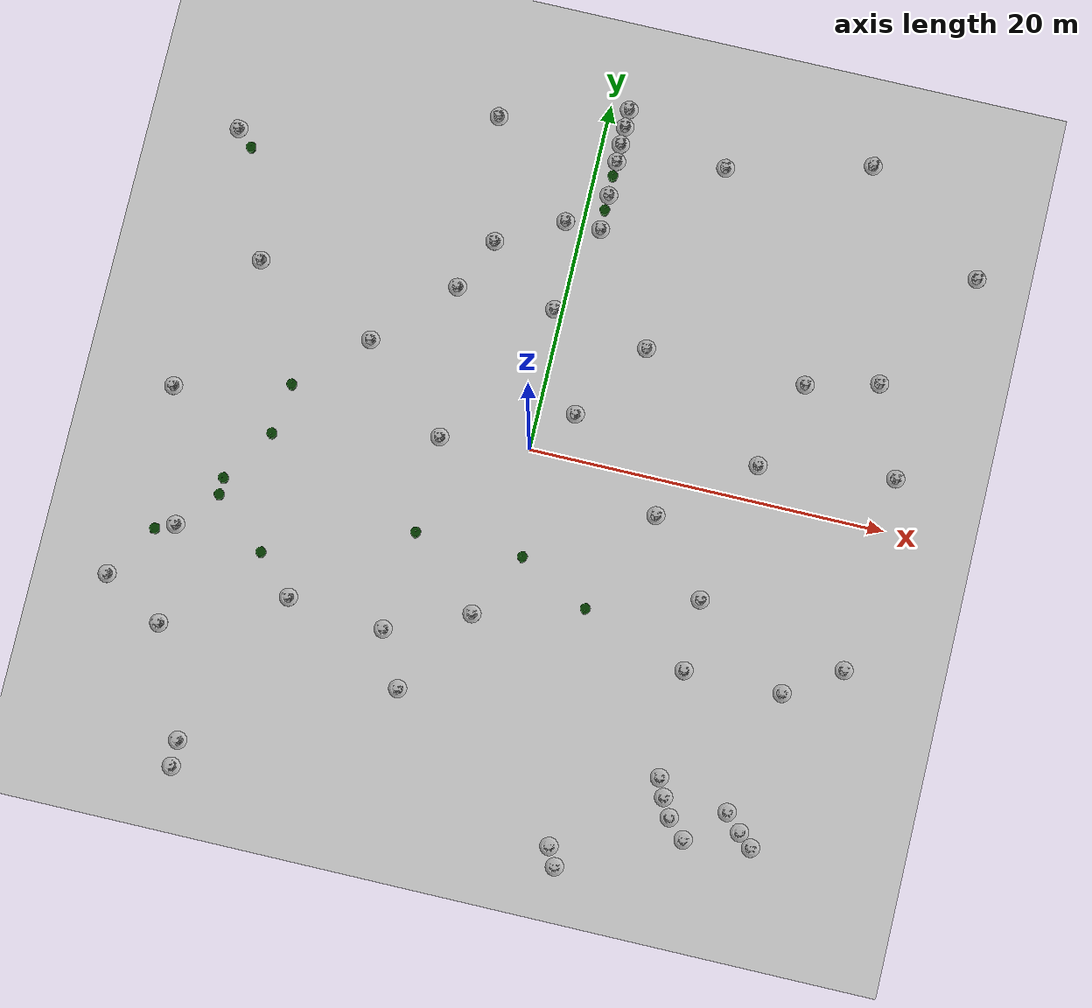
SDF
<sdf version="1.4">
 <world name="default">
  <model name="igvc_basic_ground">
   <static>1</static>
   <link name="link">
    <collision name="collision">
     <geometry><plane><normal>0 0 1</normal><size>50 50</size></plane></geometry>
     <surface><friction><ode><mu>100</mu><mu2>50</mu2></ode></friction></surface>
    </collision>
    <visual name="visual">
     <cast_shadows>0</cast_shadows>
     <geometry><plane><normal>0 0 1</normal><size>50 50</size></plane></geometry>
     <material>
      <script>
       <uri>model://igvc_basic_ground/materials/scripts</uri>
       <uri>model://igvc_basic_ground/materials/textures</uri>
       <name>igvc_basic_ground/Image</name>
      </script>
     </material>
    </visual>
    <velocity_decay><linear>0</linear><angular>0</angular></velocity_decay>
   </link>
  </model>
  <light name="sun" type="directional">
   <pose>0 0 10 0 -0 0</pose>
   <diffuse>0.8 0.8 0.8 1</diffuse>
   <specular>0.2 0.2 0.2 1</specular>
   <attenuation>
    <range>1000</range>
    <constant>0.9</constant>
    <linear>0.01</linear>
    <quadratic>0.001</quadratic>
   </attenuation>
   <direction>-0.5 0.1 -0.9</direction>
  </light>
  <physics type="ode">
   <max_step_size>0.001</max_step_size>
   <real_time_factor>1</real_time_factor>
   <real_time_update_rate>1000</real_time_update_rate>
   <gravity>0 0 -9.8</gravity>
  </physics>
  <scene><ambient>0.4 0.4 0.4 1</ambient><background>0.7 0.7 0.7 1</background><shadows>1</shadows></scene>
  <spherical_coordinates>
   <surface_model>EARTH_WGS84</surface_model>
   <latitude_deg>0</latitude_deg>
   <longitude_deg>0</longitude_deg>
   <elevation>0</elevation>
   <heading_deg>0</heading_deg>
  </spherical_coordinates>
  <model name="Construction Barrel">
   <link name="link">
    <inertial>
     <pose>0 0 0.4 0 -0 0</pose>
     <mass>500</mass>
     <inertia><ixx>51.2096</ixx><iyy>51.2096</iyy><izz>25</izz><ixy>0</ixy><ixz>0</ixz><iyz>0</iyz></inertia>
    </inertial>
    <collision name="collision">
     <geometry><mesh><uri>model://construction_barrel/meshes/construction_barrel.dae</uri></mesh></geometry>
    </collision>
    <visual name="visual">
     <geometry><mesh><uri>model://construction_barrel/meshes/construction_barrel.dae</uri></mesh></geometry>
    </visual>
    <velocity_decay><linear>0</linear><angular>0</angular></velocity_decay>
   </link>
   <pose>-15.0002 -21.4499 -2e-06 2e-06 4e-06 -0.002846</pose>
   <static>0</static>
  </model>
  <model name="Construction Barrel_0">
   <link name="link">
    <inertial>
     <pose>0 0 0.4 0 -0 0</pose>
     <mass>500</mass>
     <inertia><ixx>51.2096</ixx><iyy>51.2096</iyy><izz>25</izz><ixy>0</ixy><ixz>0</ixz><iyz>0</iyz></inertia>
    </inertial>
    <collision name="collision">
     <geometry><mesh><uri>model://construction_barrel/meshes/construction_barrel.dae</uri></mesh></geometry>
    </collision>
    <visual name="visual">
     <geometry><mesh><uri>model://construction_barrel/meshes/construction_barrel.dae</uri></mesh></geometry>
    </visual>
    <velocity_decay><linear>0</linear><angular>0</angular></velocity_decay>
   </link>
   <pose>-15.0002 -19.9984 -2e-06 0 -6e-06 -0.00292</pose>
   <static>0</static>
  </model>
  <model name="Construction Barrel_1">
   <link name="link">
    <inertial>
     <pose>0 0 0.4 0 -0 0</pose>
     <mass>500</mass>
     <inertia><ixx>51.2096</ixx><iyy>51.2096</iyy><izz>25</izz><ixy>0</ixy><ixz>0</ixz><iyz>0</iyz></inertia>
    </inertial>
    <collision name="collision">
     <geometry><mesh><uri>model://construction_barrel/meshes/construction_barrel.dae</uri></mesh></geometry>
    </collision>
    <visual name="visual">
     <geometry><mesh><uri>model://construction_barrel/meshes/construction_barrel.dae</uri></mesh></geometry>
    </visual>
    <velocity_decay><linear>0</linear><angular>0</angular></velocity_decay>
   </link>
   <pose>-17.5785 -13.9984 -2e-06 4e-06 6e-06 -0.002915</pose>
   <static>0</static>
  </model>
  <model name="Construction Barrel_2">
   <link name="link">
    <inertial>
     <pose>0 0 0.4 0 -0 0</pose>
     <mass>500</mass>
     <inertia><ixx>51.2096</ixx><iyy>51.2096</iyy><izz>25</izz><ixy>0</ixy><ixz>0</ixz><iyz>0</iyz></inertia>
    </inertial>
    <collision name="collision">
     <geometry><mesh><uri>model://construction_barrel/meshes/construction_barrel.dae</uri></mesh></geometry>
    </collision>
    <visual name="visual">
     <geometry><mesh><uri>model://construction_barrel/meshes/construction_barrel.dae</uri></mesh></geometry>
    </visual>
    <velocity_decay><linear>0</linear><angular>0</angular></velocity_decay>
   </link>
   <pose>-21.0002 -11.9984 -2e-06 2e-06 -4e-06 -0.0029</pose>
   <static>0</static>
  </model>
  <model name="first_2015_trash_can">
   <link name="link">
    <inertial>
     <pose>0 0 0.3683 0 -0 0</pose>
     <mass>4.83076</mass>
     <inertia>
      <ixx>0.281534</ixx>
      <ixy>0</ixy>
      <ixz>0</ixz>
      <iyy>0.281534</iyy>
      <iyz>0</iyz>
      <izz>0.126223</izz>
     </inertia>
    </inertial>
    <visual name="visual">
     <geometry><mesh><uri>model://first_2015_trash_can/meshes/trash_can.dae</uri></mesh></geometry>
    </visual>
    <collision name="collision">
     <geometry><mesh><uri>model://first_2015_trash_can/meshes/trash_can.dae</uri></mesh></geometry>
    </collision>
    <velocity_decay><linear>0</linear><angular>0</angular></velocity_decay>
   </link>
   <pose>-18.9861 -9.04333 -5e-06 5e-06 2.1e-05 -0.480324</pose>
   <static>0</static>
  </model>
  <model name="Construction Barrel_3">
   <link name="link">
    <inertial>
     <pose>0 0 0.4 0 -0 0</pose>
     <mass>500</mass>
     <inertia><ixx>51.2096</ixx><iyy>51.2096</iyy><izz>25</izz><ixy>0</ixy><ixz>0</ixz><iyz>0</iyz></inertia>
    </inertial>
    <collision name="collision">
     <geometry><mesh><uri>model://construction_barrel/meshes/construction_barrel.dae</uri></mesh></geometry>
    </collision>
    <visual name="visual">
     <geometry><mesh><uri>model://construction_barrel/meshes/construction_barrel.dae</uri></mesh></geometry>
    </visual>
    <velocity_decay><linear>0</linear><angular>0</angular></velocity_decay>
   </link>
   <pose>-17.9999 -8.49433 -4e-06 9e-06 4e-06 -0.002824</pose>
   <static>0</static>
  </model>
  <model name="first_2015_trash_can_1">
   <link name="link">
    <inertial>
     <pose>0 0 0.3683 0 -0 0</pose>
     <mass>4.83076</mass>
     <inertia>
      <ixx>0.281534</ixx>
      <ixy>0</ixy>
      <ixz>0</ixz>
      <iyy>0.281534</iyy>
      <iyz>0</iyz>
      <izz>0.126223</izz>
     </inertia>
    </inertial>
    <visual name="visual">
     <geometry><mesh><uri>model://first_2015_trash_can/meshes/trash_can.dae</uri></mesh></geometry>
    </visual>
    <collision name="collision">
     <geometry><mesh><uri>model://first_2015_trash_can/meshes/trash_can.dae</uri></mesh></geometry>
    </collision>
    <velocity_decay><linear>0</linear><angular>0</angular></velocity_decay>
   </link>
   <pose>-15.9994 -6.40827 -1e-06 -3e-06 1.7e-05 -0.002337</pose>
   <static>0</static>
  </model>
  <model name="first_2015_trash_can_2">
   <link name="link">
    <inertial>
     <pose>0 0 0.3683 0 -0 0</pose>
     <mass>4.83076</mass>
     <inertia>
      <ixx>0.281534</ixx>
      <ixy>0</ixy>
      <ixz>0</ixz>
      <iyy>0.281534</iyy>
      <iyz>0</iyz>
      <izz>0.126223</izz>
     </inertia>
    </inertial>
    <visual name="visual">
     <geometry><mesh><uri>model://first_2015_trash_can/meshes/trash_can.dae</uri></mesh></geometry>
    </visual>
    <collision name="collision">
     <geometry><mesh><uri>model://first_2015_trash_can/meshes/trash_can.dae</uri></mesh></geometry>
    </collision>
    <velocity_decay><linear>0</linear><angular>0</angular></velocity_decay>
   </link>
   <pose>-15.9995 -5.46429 -5e-06 2e-06 2e-05 -0.002052</pose>
   <static>0</static>
  </model>
  <model name="Construction Barrel_4">
   <link name="link">
    <inertial>
     <pose>0 0 0.4 0 -0 0</pose>
     <mass>500</mass>
     <inertia><ixx>51.2096</ixx><iyy>51.2096</iyy><izz>25</izz><ixy>0</ixy><ixz>0</ixz><iyz>0</iyz></inertia>
    </inertial>
    <collision name="collision">
     <geometry><mesh><uri>model://construction_barrel/meshes/construction_barrel.dae</uri></mesh></geometry>
    </collision>
    <visual name="visual">
     <geometry><mesh><uri>model://construction_barrel/meshes/construction_barrel.dae</uri></mesh></geometry>
    </visual>
    <velocity_decay><linear>0</linear><angular>0</angular></velocity_decay>
   </link>
   <pose>-20.0002 -0.998476 -3e-06 4e-06 1e-05 -0.002729</pose>
   <static>0</static>
  </model>
  <model name="Construction Barrel_5">
   <link name="link">
    <inertial>
     <pose>0 0 0.4 0 -0 0</pose>
     <mass>500</mass>
     <inertia><ixx>51.2096</ixx><iyy>51.2096</iyy><izz>25</izz><ixy>0</ixy><ixz>0</ixz><iyz>0</iyz></inertia>
    </inertial>
    <collision name="collision">
     <geometry><mesh><uri>model://construction_barrel/meshes/construction_barrel.dae</uri></mesh></geometry>
    </collision>
    <visual name="visual">
     <geometry><mesh><uri>model://construction_barrel/meshes/construction_barrel.dae</uri></mesh></geometry>
    </visual>
    <velocity_decay><linear>0</linear><angular>0</angular></velocity_decay>
   </link>
   <pose>-17.0002 7.00149 -2e-06 1e-06 -4e-06 -0.002674</pose>
   <static>0</static>
  </model>
  <model name="Construction Barrel_6">
   <link name="link">
    <inertial>
     <pose>0 0 0.4 0 -0 0</pose>
     <mass>500</mass>
     <inertia><ixx>51.2096</ixx><iyy>51.2096</iyy><izz>25</izz><ixy>0</ixy><ixz>0</ixz><iyz>0</iyz></inertia>
    </inertial>
    <collision name="collision">
     <geometry><mesh><uri>model://construction_barrel/meshes/construction_barrel.dae</uri></mesh></geometry>
    </collision>
    <visual name="visual">
     <geometry><mesh><uri>model://construction_barrel/meshes/construction_barrel.dae</uri></mesh></geometry>
    </visual>
    <velocity_decay><linear>0</linear><angular>0</angular></velocity_decay>
   </link>
   <pose>-20.0002 14.0015 -2e-06 -1e-06 -7e-06 -0.002614</pose>
   <static>0</static>
  </model>
  <model name="first_2015_trash_can_3">
   <link name="link">
    <inertial>
     <pose>0 0 0.3683 0 -0 0</pose>
     <mass>4.83076</mass>
     <inertia>
      <ixx>0.281534</ixx>
      <ixy>0</ixy>
      <ixz>0</ixz>
      <iyy>0.281534</iyy>
      <iyz>0</iyz>
      <izz>0.126223</izz>
     </inertia>
    </inertial>
    <visual name="visual">
     <geometry><mesh><uri>model://first_2015_trash_can/meshes/trash_can.dae</uri></mesh></geometry>
    </visual>
    <collision name="collision">
     <geometry><mesh><uri>model://first_2015_trash_can/meshes/trash_can.dae</uri></mesh></geometry>
    </collision>
    <velocity_decay><linear>0</linear><angular>0</angular></velocity_decay>
   </link>
   <pose>-18.9996 12.9999 -4e-06 -4e-06 2e-06 -0.002012</pose>
   <static>0</static>
  </model>
  <model name="Construction Barrel_7">
   <link name="link">
    <inertial>
     <pose>0 0 0.4 0 -0 0</pose>
     <mass>500</mass>
     <inertia><ixx>51.2096</ixx><iyy>51.2096</iyy><izz>25</izz><ixy>0</ixy><ixz>0</ixz><iyz>0</iyz></inertia>
    </inertial>
    <collision name="collision">
     <geometry><mesh><uri>model://construction_barrel/meshes/construction_barrel.dae</uri></mesh></geometry>
    </collision>
    <visual name="visual">
     <geometry><mesh><uri>model://construction_barrel/meshes/construction_barrel.dae</uri></mesh></geometry>
    </visual>
    <velocity_decay><linear>0</linear><angular>0</angular></velocity_decay>
   </link>
   <pose>-6.00017 18.0014 -0 0 -0 -0.002471</pose>
   <static>0</static>
  </model>
  <model name="Construction Barrel_8">
   <link name="link">
    <inertial>
     <pose>0 0 0.4 0 -0 0</pose>
     <mass>500</mass>
     <inertia><ixx>51.2096</ixx><iyy>51.2096</iyy><izz>25</izz><ixy>0</ixy><ixz>0</ixz><iyz>0</iyz></inertia>
    </inertial>
    <collision name="collision">
     <geometry><mesh><uri>model://construction_barrel/meshes/construction_barrel.dae</uri></mesh></geometry>
    </collision>
    <visual name="visual">
     <geometry><mesh><uri>model://construction_barrel/meshes/construction_barrel.dae</uri></mesh></geometry>
    </visual>
    <velocity_decay><linear>0</linear><angular>0</angular></velocity_decay>
   </link>
   <pose>1.00624 20.0321 -2e-06 -3e-06 7e-06 0.001856</pose>
   <static>0</static>
  </model>
  <model name="Construction Barrel_9">
   <link name="link">
    <inertial>
     <pose>0 0 0.4 0 -0 0</pose>
     <mass>500</mass>
     <inertia><ixx>51.2096</ixx><iyy>51.2096</iyy><izz>25</izz><ixy>0</ixy><ixz>0</ixz><iyz>0</iyz></inertia>
    </inertial>
    <collision name="collision">
     <geometry><mesh><uri>model://construction_barrel/meshes/construction_barrel.dae</uri></mesh></geometry>
    </collision>
    <visual name="visual">
     <geometry><mesh><uri>model://construction_barrel/meshes/construction_barrel.dae</uri></mesh></geometry>
    </visual>
    <velocity_decay><linear>0</linear><angular>0</angular></velocity_decay>
   </link>
   <pose>1.0074 19.0143 -4e-06 4e-06 1e-05 -0.042374</pose>
   <static>0</static>
  </model>
  <model name="Construction Barrel_10">
   <link name="link">
    <inertial>
     <pose>0 0 0.4 0 -0 0</pose>
     <mass>500</mass>
     <inertia><ixx>51.2096</ixx><iyy>51.2096</iyy><izz>25</izz><ixy>0</ixy><ixz>0</ixz><iyz>0</iyz></inertia>
    </inertial>
    <collision name="collision">
     <geometry><mesh><uri>model://construction_barrel/meshes/construction_barrel.dae</uri></mesh></geometry>
    </collision>
    <visual name="visual">
     <geometry><mesh><uri>model://construction_barrel/meshes/construction_barrel.dae</uri></mesh></geometry>
    </visual>
    <velocity_decay><linear>0</linear><angular>0</angular></velocity_decay>
   </link>
   <pose>0.994843 17.9958 2e-06 1e-06 3e-06 0.057181</pose>
   <static>0</static>
  </model>
  <model name="Construction Barrel_11">
   <link name="link">
    <inertial>
     <pose>0 0 0.4 0 -0 0</pose>
     <mass>500</mass>
     <inertia><ixx>51.2096</ixx><iyy>51.2096</iyy><izz>25</izz><ixy>0</ixy><ixz>0</ixz><iyz>0</iyz></inertia>
    </inertial>
    <collision name="collision">
     <geometry><mesh><uri>model://construction_barrel/meshes/construction_barrel.dae</uri></mesh></geometry>
    </collision>
    <visual name="visual">
     <geometry><mesh><uri>model://construction_barrel/meshes/construction_barrel.dae</uri></mesh></geometry>
    </visual>
    <velocity_decay><linear>0</linear><angular>0</angular></velocity_decay>
   </link>
   <pose>1.00151 16.98 -2e-06 4e-06 -3e-06 0.038451</pose>
   <static>0</static>
  </model>
  <model name="first_2015_trash_can_4">
   <link name="link">
    <inertial>
     <pose>0 0 0.3683 0 -0 0</pose>
     <mass>4.83076</mass>
     <inertia>
      <ixx>0.281534</ixx>
      <ixy>0</ixy>
      <ixz>0</ixz>
      <iyy>0.281534</iyy>
      <iyz>0</iyz>
      <izz>0.126223</izz>
     </inertia>
    </inertial>
    <visual name="visual">
     <geometry><mesh><uri>model://first_2015_trash_can/meshes/trash_can.dae</uri></mesh></geometry>
    </visual>
    <collision name="collision">
     <geometry><mesh><uri>model://first_2015_trash_can/meshes/trash_can.dae</uri></mesh></geometry>
    </collision>
    <velocity_decay><linear>0</linear><angular>0</angular></velocity_decay>
   </link>
   <pose>1.00038 15.9999 -2e-06 3e-06 1.1e-05 -0.001937</pose>
   <static>0</static>
  </model>
  <model name="Construction Barrel_12">
   <link name="link">
    <inertial>
     <pose>0 0 0.4 0 -0 0</pose>
     <mass>500</mass>
     <inertia><ixx>51.2096</ixx><iyy>51.2096</iyy><izz>25</izz><ixy>0</ixy><ixz>0</ixz><iyz>0</iyz></inertia>
    </inertial>
    <collision name="collision">
     <geometry><mesh><uri>model://construction_barrel/meshes/construction_barrel.dae</uri></mesh></geometry>
    </collision>
    <visual name="visual">
     <geometry><mesh><uri>model://construction_barrel/meshes/construction_barrel.dae</uri></mesh></geometry>
    </visual>
    <velocity_decay><linear>0</linear><angular>0</angular></velocity_decay>
   </link>
   <pose>0.99985 15.0012 -0 0 -0 -0.002118</pose>
   <static>0</static>
  </model>
  <model name="Construction Barrel_13">
   <link name="link">
    <inertial>
     <pose>0 0 0.4 0 -0 0</pose>
     <mass>500</mass>
     <inertia><ixx>51.2096</ixx><iyy>51.2096</iyy><izz>25</izz><ixy>0</ixy><ixz>0</ixz><iyz>0</iyz></inertia>
    </inertial>
    <collision name="collision">
     <geometry><mesh><uri>model://construction_barrel/meshes/construction_barrel.dae</uri></mesh></geometry>
    </collision>
    <visual name="visual">
     <geometry><mesh><uri>model://construction_barrel/meshes/construction_barrel.dae</uri></mesh></geometry>
    </visual>
    <velocity_decay><linear>0</linear><angular>0</angular></velocity_decay>
   </link>
   <pose>0.999855 13.0011 -2e-06 -1e-06 -7e-06 -0.002052</pose>
   <static>0</static>
  </model>
  <model name="first_2015_trash_can_5">
   <link name="link">
    <inertial>
     <pose>0 0 0.3683 0 -0 0</pose>
     <mass>4.83076</mass>
     <inertia>
      <ixx>0.281534</ixx>
      <ixy>0</ixy>
      <ixz>0</ixz>
      <iyy>0.281534</iyy>
      <iyz>0</iyz>
      <izz>0.126223</izz>
     </inertia>
    </inertial>
    <visual name="visual">
     <geometry><mesh><uri>model://first_2015_trash_can/meshes/trash_can.dae</uri></mesh></geometry>
    </visual>
    <collision name="collision">
     <geometry><mesh><uri>model://first_2015_trash_can/meshes/trash_can.dae</uri></mesh></geometry>
    </collision>
    <velocity_decay><linear>0</linear><angular>0</angular></velocity_decay>
   </link>
   <pose>1.00032 14 -1e-06 1.4e-05 -3e-06 -0.001248</pose>
   <static>0</static>
  </model>
  <model name="Construction Barrel_14">
   <link name="link">
    <inertial>
     <pose>0 0 0.4 0 -0 0</pose>
     <mass>500</mass>
     <inertia><ixx>51.2096</ixx><iyy>51.2096</iyy><izz>25</izz><ixy>0</ixy><ixz>0</ixz><iyz>0</iyz></inertia>
    </inertial>
    <collision name="collision">
     <geometry><mesh><uri>model://construction_barrel/meshes/construction_barrel.dae</uri></mesh></geometry>
    </collision>
    <visual name="visual">
     <geometry><mesh><uri>model://construction_barrel/meshes/construction_barrel.dae</uri></mesh></geometry>
    </visual>
    <velocity_decay><linear>0</linear><angular>0</angular></velocity_decay>
   </link>
   <pose>-4.58992 11.0011 -0 1e-06 1e-06 -0.001914</pose>
   <static>0</static>
  </model>
  <model name="Construction Barrel_15">
   <link name="link">
    <inertial>
     <pose>0 0 0.4 0 -0 0</pose>
     <mass>500</mass>
     <inertia><ixx>51.2096</ixx><iyy>51.2096</iyy><izz>25</izz><ixy>0</ixy><ixz>0</ixz><iyz>0</iyz></inertia>
    </inertial>
    <collision name="collision">
     <geometry><mesh><uri>model://construction_barrel/meshes/construction_barrel.dae</uri></mesh></geometry>
    </collision>
    <visual name="visual">
     <geometry><mesh><uri>model://construction_barrel/meshes/construction_barrel.dae</uri></mesh></geometry>
    </visual>
    <velocity_decay><linear>0</linear><angular>0</angular></velocity_decay>
   </link>
   <pose>-1.00013 13.0011 -2e-06 -1e-06 -7e-06 -0.001887</pose>
   <static>0</static>
  </model>
  <model name="Construction Barrel_16">
   <link name="link">
    <inertial>
     <pose>0 0 0.4 0 -0 0</pose>
     <mass>500</mass>
     <inertia><ixx>51.2096</ixx><iyy>51.2096</iyy><izz>25</izz><ixy>0</ixy><ixz>0</ixz><iyz>0</iyz></inertia>
    </inertial>
    <collision name="collision">
     <geometry><mesh><uri>model://construction_barrel/meshes/construction_barrel.dae</uri></mesh></geometry>
    </collision>
    <visual name="visual">
     <geometry><mesh><uri>model://construction_barrel/meshes/construction_barrel.dae</uri></mesh></geometry>
    </visual>
    <velocity_decay><linear>0</linear><angular>0</angular></velocity_decay>
   </link>
   <pose>-10.0001 4.001 -0 0 -0 -0.001782</pose>
   <static>0</static>
  </model>
  <model name="Construction Barrel_17">
   <link name="link">
    <inertial>
     <pose>0 0 0.4 0 -0 0</pose>
     <mass>500</mass>
     <inertia><ixx>51.2096</ixx><iyy>51.2096</iyy><izz>25</izz><ixy>0</ixy><ixz>0</ixz><iyz>0</iyz></inertia>
    </inertial>
    <collision name="collision">
     <geometry><mesh><uri>model://construction_barrel/meshes/construction_barrel.dae</uri></mesh></geometry>
    </collision>
    <visual name="visual">
     <geometry><mesh><uri>model://construction_barrel/meshes/construction_barrel.dae</uri></mesh></geometry>
    </visual>
    <velocity_decay><linear>0</linear><angular>0</angular></velocity_decay>
   </link>
   <pose>-6.00012 8.00097 -0 2.06795e-25 -1e-06 -0.001733</pose>
   <static>0</static>
  </model>
  <model name="Construction Barrel_18">
   <link name="link">
    <inertial>
     <pose>0 0 0.4 0 -0 0</pose>
     <mass>500</mass>
     <inertia><ixx>51.2096</ixx><iyy>51.2096</iyy><izz>25</izz><ixy>0</ixy><ixz>0</ixz><iyz>0</iyz></inertia>
    </inertial>
    <collision name="collision">
     <geometry><mesh><uri>model://construction_barrel/meshes/construction_barrel.dae</uri></mesh></geometry>
    </collision>
    <visual name="visual">
     <geometry><mesh><uri>model://construction_barrel/meshes/construction_barrel.dae</uri></mesh></geometry>
    </visual>
    <velocity_decay><linear>0</linear><angular>0</angular></velocity_decay>
   </link>
   <pose>-11.0001 -10.9991 -0 1e-06 1e-06 -0.001678</pose>
   <static>0</static>
  </model>
  <model name="first_2015_trash_can_6">
   <link name="link">
    <inertial>
     <pose>0 0 0.3683 0 -0 0</pose>
     <mass>4.83076</mass>
     <inertia>
      <ixx>0.281534</ixx>
      <ixy>0</ixy>
      <ixz>0</ixz>
      <iyy>0.281534</iyy>
      <iyz>0</iyz>
      <izz>0.126223</izz>
     </inertia>
    </inertial>
    <visual name="visual">
     <geometry><mesh><uri>model://first_2015_trash_can/meshes/trash_can.dae</uri></mesh></geometry>
    </visual>
    <collision name="collision">
     <geometry><mesh><uri>model://first_2015_trash_can/meshes/trash_can.dae</uri></mesh></geometry>
    </collision>
    <velocity_decay><linear>0</linear><angular>0</angular></velocity_decay>
   </link>
   <pose>-12.9997 -9.00009 -1e-06 7e-06 5e-06 -0.001113</pose>
   <static>0</static>
  </model>
  <model name="first_2015_trash_can_7">
   <link name="link">
    <inertial>
     <pose>0 0 0.3683 0 -0 0</pose>
     <mass>4.83076</mass>
     <inertia>
      <ixx>0.281534</ixx>
      <ixy>0</ixy>
      <ixz>0</ixz>
      <iyy>0.281534</iyy>
      <iyz>0</iyz>
      <izz>0.126223</izz>
     </inertia>
    </inertial>
    <visual name="visual">
     <geometry><mesh><uri>model://first_2015_trash_can/meshes/trash_can.dae</uri></mesh></geometry>
    </visual>
    <collision name="collision">
     <geometry><mesh><uri>model://first_2015_trash_can/meshes/trash_can.dae</uri></mesh></geometry>
    </collision>
    <velocity_decay><linear>0</linear><angular>0</angular></velocity_decay>
   </link>
   <pose>-13.9997 -2.44868 -2e-06 2e-06 1.4e-05 -0.001333</pose>
   <static>0</static>
  </model>
  <model name="first_2015_trash_can_8">
   <link name="link">
    <inertial>
     <pose>0 0 0.3683 0 -0 0</pose>
     <mass>4.83076</mass>
     <inertia>
      <ixx>0.281534</ixx>
      <ixy>0</ixy>
      <ixz>0</ixz>
      <iyy>0.281534</iyy>
      <iyz>0</iyz>
      <izz>0.126223</izz>
     </inertia>
    </inertial>
    <visual name="visual">
     <geometry><mesh><uri>model://first_2015_trash_can/meshes/trash_can.dae</uri></mesh></geometry>
    </visual>
    <collision name="collision">
     <geometry><mesh><uri>model://first_2015_trash_can/meshes/trash_can.dae</uri></mesh></geometry>
    </collision>
    <velocity_decay><linear>0</linear><angular>0</angular></velocity_decay>
   </link>
   <pose>-13.5831 0.462172 -2e-06 1.3e-05 -3e-06 -0.000809</pose>
   <static>0</static>
  </model>
  <model name="first_2015_trash_can_9">
   <link name="link">
    <inertial>
     <pose>0 0 0.3683 0 -0 0</pose>
     <mass>4.83076</mass>
     <inertia>
      <ixx>0.281534</ixx>
      <ixy>0</ixy>
      <ixz>0</ixz>
      <iyy>0.281534</iyy>
      <iyz>0</iyz>
      <izz>0.126223</izz>
     </inertia>
    </inertial>
    <visual name="visual">
     <geometry><mesh><uri>model://first_2015_trash_can/meshes/trash_can.dae</uri></mesh></geometry>
    </visual>
    <collision name="collision">
     <geometry><mesh><uri>model://first_2015_trash_can/meshes/trash_can.dae</uri></mesh></geometry>
    </collision>
    <velocity_decay><linear>0</linear><angular>0</angular></velocity_decay>
   </link>
   <pose>-4.99977 -6.00006 -6e-06 -5e-06 1e-06 -0.000997</pose>
   <static>0</static>
  </model>
  <model name="Construction Barrel_19">
   <link name="link">
    <inertial>
     <pose>0 0 0.4 0 -0 0</pose>
     <mass>500</mass>
     <inertia><ixx>51.2096</ixx><iyy>51.2096</iyy><izz>25</izz><ixy>0</ixy><ixz>0</ixz><iyz>0</iyz></inertia>
    </inertial>
    <collision name="collision">
     <geometry><mesh><uri>model://construction_barrel/meshes/construction_barrel.dae</uri></mesh></geometry>
    </collision>
    <visual name="visual">
     <geometry><mesh><uri>model://construction_barrel/meshes/construction_barrel.dae</uri></mesh></geometry>
    </visual>
    <velocity_decay><linear>0</linear><angular>0</angular></velocity_decay>
   </link>
   <pose>-0.465667 8.00078 -2e-06 -1e-06 -7e-06 -0.001395</pose>
   <static>0</static>
  </model>
  <model name="Construction Barrel_20">
   <link name="link">
    <inertial>
     <pose>0 0 0.4 0 -0 0</pose>
     <mass>500</mass>
     <inertia><ixx>51.2096</ixx><iyy>51.2096</iyy><izz>25</izz><ixy>0</ixy><ixz>0</ixz><iyz>0</iyz></inertia>
    </inertial>
    <collision name="collision">
     <geometry><mesh><uri>model://construction_barrel/meshes/construction_barrel.dae</uri></mesh></geometry>
    </collision>
    <visual name="visual">
     <geometry><mesh><uri>model://construction_barrel/meshes/construction_barrel.dae</uri></mesh></geometry>
    </visual>
    <velocity_decay><linear>0</linear><angular>0</angular></velocity_decay>
   </link>
   <pose>4.99991 7.00074 1e-06 -1e-06 -2e-06 -0.001333</pose>
   <static>0</static>
  </model>
  <model name="Construction Barrel_21">
   <link name="link">
    <inertial>
     <pose>0 0 0.4 0 -0 0</pose>
     <mass>500</mass>
     <inertia><ixx>51.2096</ixx><iyy>51.2096</iyy><izz>25</izz><ixy>0</ixy><ixz>0</ixz><iyz>0</iyz></inertia>
    </inertial>
    <collision name="collision">
     <geometry><mesh><uri>model://construction_barrel/meshes/construction_barrel.dae</uri></mesh></geometry>
    </collision>
    <visual name="visual">
     <geometry><mesh><uri>model://construction_barrel/meshes/construction_barrel.dae</uri></mesh></geometry>
    </visual>
    <velocity_decay><linear>0</linear><angular>0</angular></velocity_decay>
   </link>
   <pose>6.99991 18.0007 1e-06 -1e-06 -2e-06 -0.001277</pose>
   <static>0</static>
  </model>
  <model name="Construction Barrel_22">
   <link name="link">
    <inertial>
     <pose>0 0 0.4 0 -0 0</pose>
     <mass>500</mass>
     <inertia><ixx>51.2096</ixx><iyy>51.2096</iyy><izz>25</izz><ixy>0</ixy><ixz>0</ixz><iyz>0</iyz></inertia>
    </inertial>
    <collision name="collision">
     <geometry><mesh><uri>model://construction_barrel/meshes/construction_barrel.dae</uri></mesh></geometry>
    </collision>
    <visual name="visual">
     <geometry><mesh><uri>model://construction_barrel/meshes/construction_barrel.dae</uri></mesh></geometry>
    </visual>
    <velocity_decay><linear>0</linear><angular>0</angular></velocity_decay>
   </link>
   <pose>7.59327 -1.99932 -2e-06 -1e-06 -7e-06 -0.001213</pose>
   <static>0</static>
  </model>
  <model name="first_2015_trash_can_10">
   <link name="link">
    <inertial>
     <pose>0 0 0.3683 0 -0 0</pose>
     <mass>4.83076</mass>
     <inertia>
      <ixx>0.281534</ixx>
      <ixy>0</ixy>
      <ixz>0</ixz>
      <iyy>0.281534</iyy>
      <iyz>0</iyz>
      <izz>0.126223</izz>
     </inertia>
    </inertial>
    <visual name="visual">
     <geometry><mesh><uri>model://first_2015_trash_can/meshes/trash_can.dae</uri></mesh></geometry>
    </visual>
    <collision name="collision">
     <geometry><mesh><uri>model://first_2015_trash_can/meshes/trash_can.dae</uri></mesh></geometry>
    </collision>
    <velocity_decay><linear>0</linear><angular>0</angular></velocity_decay>
   </link>
   <pose>5.00018 -8.00008 -3e-06 1e-06 1.3e-05 -0.000567</pose>
   <static>0</static>
  </model>
  <model name="first_2015_trash_can_11">
   <link name="link">
    <inertial>
     <pose>0 0 0.3683 0 -0 0</pose>
     <mass>4.83076</mass>
     <inertia>
      <ixx>0.281534</ixx>
      <ixy>0</ixy>
      <ixz>0</ixz>
      <iyy>0.281534</iyy>
      <iyz>0</iyz>
      <izz>0.126223</izz>
     </inertia>
    </inertial>
    <visual name="visual">
     <geometry><mesh><uri>model://first_2015_trash_can/meshes/trash_can.dae</uri></mesh></geometry>
    </visual>
    <collision name="collision">
     <geometry><mesh><uri>model://first_2015_trash_can/meshes/trash_can.dae</uri></mesh></geometry>
    </collision>
    <velocity_decay><linear>0</linear><angular>0</angular></velocity_decay>
   </link>
   <pose>1.0002 -6 -3e-06 1e-06 1.5e-05 -0.000734</pose>
   <static>0</static>
  </model>
  <model name="Construction Barrel_23">
   <link name="link">
    <inertial>
     <pose>0 0 0.4 0 -0 0</pose>
     <mass>500</mass>
     <inertia><ixx>51.2096</ixx><iyy>51.2096</iyy><izz>25</izz><ixy>0</ixy><ixz>0</ixz><iyz>0</iyz></inertia>
    </inertial>
    <collision name="collision">
     <geometry><mesh><uri>model://construction_barrel/meshes/construction_barrel.dae</uri></mesh></geometry>
    </collision>
    <visual name="visual">
     <geometry><mesh><uri>model://construction_barrel/meshes/construction_barrel.dae</uri></mesh></geometry>
    </visual>
    <velocity_decay><linear>0</linear><angular>0</angular></velocity_decay>
   </link>
   <pose>-1.00008 -9.59769 -2e-06 -1e-06 -7e-06 -0.001058</pose>
   <static>0</static>
  </model>
  <model name="Construction Barrel_24">
   <link name="link">
    <inertial>
     <pose>0 0 0.4 0 -0 0</pose>
     <mass>500</mass>
     <inertia><ixx>51.2096</ixx><iyy>51.2096</iyy><izz>25</izz><ixy>0</ixy><ixz>0</ixz><iyz>0</iyz></inertia>
    </inertial>
    <collision name="collision">
     <geometry><mesh><uri>model://construction_barrel/meshes/construction_barrel.dae</uri></mesh></geometry>
    </collision>
    <visual name="visual">
     <geometry><mesh><uri>model://construction_barrel/meshes/construction_barrel.dae</uri></mesh></geometry>
    </visual>
    <velocity_decay><linear>0</linear><angular>0</angular></velocity_decay>
   </link>
   <pose>-4.00007 -14.5254 -2e-06 1e-06 -4e-06 -0.00099</pose>
   <static>0</static>
  </model>
  <model name="Construction Barrel_25">
   <link name="link">
    <inertial>
     <pose>0 0 0.4 0 -0 0</pose>
     <mass>500</mass>
     <inertia><ixx>51.2096</ixx><iyy>51.2096</iyy><izz>25</izz><ixy>0</ixy><ixz>0</ixz><iyz>0</iyz></inertia>
    </inertial>
    <collision name="collision">
     <geometry><mesh><uri>model://construction_barrel/meshes/construction_barrel.dae</uri></mesh></geometry>
    </collision>
    <visual name="visual">
     <geometry><mesh><uri>model://construction_barrel/meshes/construction_barrel.dae</uri></mesh></geometry>
    </visual>
    <velocity_decay><linear>0</linear><angular>0</angular></velocity_decay>
   </link>
   <pose>-5.54645 -11.5209 -4e-06 1e-06 -9e-06 -0.000968</pose>
   <static>0</static>
  </model>
  <model name="Construction Barrel_26">
   <link name="link">
    <inertial>
     <pose>0 0 0.4 0 -0 0</pose>
     <mass>500</mass>
     <inertia><ixx>51.2096</ixx><iyy>51.2096</iyy><izz>25</izz><ixy>0</ixy><ixz>0</ixz><iyz>0</iyz></inertia>
    </inertial>
    <collision name="collision">
     <geometry><mesh><uri>model://construction_barrel/meshes/construction_barrel.dae</uri></mesh></geometry>
    </collision>
    <visual name="visual">
     <geometry><mesh><uri>model://construction_barrel/meshes/construction_barrel.dae</uri></mesh></geometry>
    </visual>
    <velocity_decay><linear>0</linear><angular>0</angular></velocity_decay>
   </link>
   <pose>10.9999 -5.99947 -2e-06 -1e-06 -7e-06 -0.000944</pose>
   <static>0</static>
  </model>
  <model name="Construction Barrel_27">
   <link name="link">
    <inertial>
     <pose>0 0 0.4 0 -0 0</pose>
     <mass>500</mass>
     <inertia><ixx>51.2096</ixx><iyy>51.2096</iyy><izz>25</izz><ixy>0</ixy><ixz>0</ixz><iyz>0</iyz></inertia>
    </inertial>
    <collision name="collision">
     <geometry><mesh><uri>model://construction_barrel/meshes/construction_barrel.dae</uri></mesh></geometry>
    </collision>
    <visual name="visual">
     <geometry><mesh><uri>model://construction_barrel/meshes/construction_barrel.dae</uri></mesh></geometry>
    </visual>
    <velocity_decay><linear>0</linear><angular>0</angular></velocity_decay>
   </link>
   <pose>10.9999 -9.99956 0 5e-06 1e-06 -0.000793</pose>
   <static>0</static>
  </model>
  <model name="Construction Barrel_28">
   <link name="link">
    <inertial>
     <pose>0 0 0.4 0 -0 0</pose>
     <mass>500</mass>
     <inertia><ixx>51.2096</ixx><iyy>51.2096</iyy><izz>25</izz><ixy>0</ixy><ixz>0</ixz><iyz>0</iyz></inertia>
    </inertial>
    <collision name="collision">
     <geometry><mesh><uri>model://construction_barrel/meshes/construction_barrel.dae</uri></mesh></geometry>
    </collision>
    <visual name="visual">
     <geometry><mesh><uri>model://construction_barrel/meshes/construction_barrel.dae</uri></mesh></geometry>
    </visual>
    <velocity_decay><linear>0</linear><angular>0</angular></velocity_decay>
   </link>
   <pose>13.9999 7.00043 -0 -0 -0 -0.000763</pose>
   <static>0</static>
  </model>
  <model name="Construction Barrel_29">
   <link name="link">
    <inertial>
     <pose>0 0 0.4 0 -0 0</pose>
     <mass>500</mass>
     <inertia><ixx>51.2096</ixx><iyy>51.2096</iyy><izz>25</izz><ixy>0</ixy><ixz>0</ixz><iyz>0</iyz></inertia>
    </inertial>
    <collision name="collision">
     <geometry><mesh><uri>model://construction_barrel/meshes/construction_barrel.dae</uri></mesh></geometry>
    </collision>
    <visual name="visual">
     <geometry><mesh><uri>model://construction_barrel/meshes/construction_barrel.dae</uri></mesh></geometry>
    </visual>
    <velocity_decay><linear>0</linear><angular>0</angular></velocity_decay>
   </link>
   <pose>12.4528 2.00041 0 3e-06 -4.1359e-25 -0.000729</pose>
   <static>0</static>
  </model>
  <model name="Construction Barrel_30">
   <link name="link">
    <inertial>
     <pose>0 0 0.4 0 -0 0</pose>
     <mass>500</mass>
     <inertia><ixx>51.2096</ixx><iyy>51.2096</iyy><izz>25</izz><ixy>0</ixy><ixz>0</ixz><iyz>0</iyz></inertia>
    </inertial>
    <collision name="collision">
     <geometry><mesh><uri>model://construction_barrel/meshes/construction_barrel.dae</uri></mesh></geometry>
    </collision>
    <visual name="visual">
     <geometry><mesh><uri>model://construction_barrel/meshes/construction_barrel.dae</uri></mesh></geometry>
    </visual>
    <velocity_decay><linear>0</linear><angular>0</angular></velocity_decay>
   </link>
   <pose>1.99995 2.50505 -0 0 -0 -0.000691</pose>
   <static>0</static>
  </model>
  <model name="Construction Barrel_31">
   <link name="link">
    <inertial>
     <pose>0 0 0.4 0 -0 0</pose>
     <mass>500</mass>
     <inertia><ixx>51.2096</ixx><iyy>51.2096</iyy><izz>25</izz><ixy>0</ixy><ixz>0</ixz><iyz>0</iyz></inertia>
    </inertial>
    <collision name="collision">
     <geometry><mesh><uri>model://construction_barrel/meshes/construction_barrel.dae</uri></mesh></geometry>
    </collision>
    <visual name="visual">
     <geometry><mesh><uri>model://construction_barrel/meshes/construction_barrel.dae</uri></mesh></geometry>
    </visual>
    <velocity_decay><linear>0</linear><angular>0</angular></velocity_decay>
   </link>
   <pose>-5.00005 -0.439745 2e-06 -3e-06 -3e-06 -0.000654</pose>
   <static>0</static>
  </model>
  <model name="Construction Barrel_32">
   <link name="link">
    <inertial>
     <pose>0 0 0.4 0 -0 0</pose>
     <mass>500</mass>
     <inertia><ixx>51.2096</ixx><iyy>51.2096</iyy><izz>25</izz><ixy>0</ixy><ixz>0</ixz><iyz>0</iyz></inertia>
    </inertial>
    <collision name="collision">
     <geometry><mesh><uri>model://construction_barrel/meshes/construction_barrel.dae</uri></mesh></geometry>
    </collision>
    <visual name="visual">
     <geometry><mesh><uri>model://construction_barrel/meshes/construction_barrel.dae</uri></mesh></geometry>
    </visual>
    <velocity_decay><linear>0</linear><angular>0</angular></velocity_decay>
   </link>
   <pose>15 20.0003 -1e-06 2e-06 2e-06 -0.000608</pose>
   <static>0</static>
  </model>
  <model name="Construction Barrel_33">
   <link name="link">
    <inertial>
     <pose>0 0 0.4 0 -0 0</pose>
     <mass>500</mass>
     <inertia><ixx>51.2096</ixx><iyy>51.2096</iyy><izz>25</izz><ixy>0</ixy><ixz>0</ixz><iyz>0</iyz></inertia>
    </inertial>
    <collision name="collision">
     <geometry><mesh><uri>model://construction_barrel/meshes/construction_barrel.dae</uri></mesh></geometry>
    </collision>
    <visual name="visual">
     <geometry><mesh><uri>model://construction_barrel/meshes/construction_barrel.dae</uri></mesh></geometry>
    </visual>
    <velocity_decay><linear>0</linear><angular>0</angular></velocity_decay>
   </link>
   <pose>22 15.0003 -2e-06 3e-06 3e-06 -0.000565</pose>
   <static>0</static>
  </model>
  <model name="Construction Barrel_34">
   <link name="link">
    <inertial>
     <pose>0 0 0.4 0 -0 0</pose>
     <mass>500</mass>
     <inertia><ixx>51.2096</ixx><iyy>51.2096</iyy><izz>25</izz><ixy>0</ixy><ixz>0</ixz><iyz>0</iyz></inertia>
    </inertial>
    <collision name="collision">
     <geometry><mesh><uri>model://construction_barrel/meshes/construction_barrel.dae</uri></mesh></geometry>
    </collision>
    <visual name="visual">
     <geometry><mesh><uri>model://construction_barrel/meshes/construction_barrel.dae</uri></mesh></geometry>
    </visual>
    <velocity_decay><linear>0</linear><angular>0</angular></velocity_decay>
   </link>
   <pose>20 3.0003 -0 0 0 -0.000529</pose>
   <static>0</static>
  </model>
  <model name="Construction Barrel_35">
   <link name="link">
    <inertial>
     <pose>0 0 0.4 0 -0 0</pose>
     <mass>500</mass>
     <inertia><ixx>51.2096</ixx><iyy>51.2096</iyy><izz>25</izz><ixy>0</ixy><ixz>0</ixz><iyz>0</iyz></inertia>
    </inertial>
    <collision name="collision">
     <geometry><mesh><uri>model://construction_barrel/meshes/construction_barrel.dae</uri></mesh></geometry>
    </collision>
    <visual name="visual">
     <geometry><mesh><uri>model://construction_barrel/meshes/construction_barrel.dae</uri></mesh></geometry>
    </visual>
    <velocity_decay><linear>0</linear><angular>0</angular></velocity_decay>
   </link>
   <pose>18 8.00028 -1e-06 2e-06 2e-06 -0.000499</pose>
   <static>0</static>
  </model>
  <model name="Construction Barrel_36">
   <link name="link">
    <inertial>
     <pose>0 0 0.4 0 -0 0</pose>
     <mass>500</mass>
     <inertia><ixx>51.2096</ixx><iyy>51.2096</iyy><izz>25</izz><ixy>0</ixy><ixz>0</ixz><iyz>0</iyz></inertia>
    </inertial>
    <collision name="collision">
     <geometry><mesh><uri>model://construction_barrel/meshes/construction_barrel.dae</uri></mesh></geometry>
    </collision>
    <visual name="visual">
     <geometry><mesh><uri>model://construction_barrel/meshes/construction_barrel.dae</uri></mesh></geometry>
    </visual>
    <velocity_decay><linear>0</linear><angular>0</angular></velocity_decay>
   </link>
   <pose>19.5098 -7.99975 -1e-06 -2e-06 8e-06 -0.00045</pose>
   <static>0</static>
  </model>
  <model name="Construction Barrel_37">
   <link name="link">
    <inertial>
     <pose>0 0 0.4 0 -0 0</pose>
     <mass>500</mass>
     <inertia><ixx>51.2096</ixx><iyy>51.2096</iyy><izz>25</izz><ixy>0</ixy><ixz>0</ixz><iyz>0</iyz></inertia>
    </inertial>
    <collision name="collision">
     <geometry><mesh><uri>model://construction_barrel/meshes/construction_barrel.dae</uri></mesh></geometry>
    </collision>
    <visual name="visual">
     <geometry><mesh><uri>model://construction_barrel/meshes/construction_barrel.dae</uri></mesh></geometry>
    </visual>
    <velocity_decay><linear>0</linear><angular>0</angular></velocity_decay>
   </link>
   <pose>16.4832 -9.99977 -4e-06 0 1e-05 -0.000414</pose>
   <static>0</static>
  </model>
  <model name="Construction Barrel_38">
   <link name="link">
    <inertial>
     <pose>0 0 0.4 0 -0 0</pose>
     <mass>500</mass>
     <inertia><ixx>51.2096</ixx><iyy>51.2096</iyy><izz>25</izz><ixy>0</ixy><ixz>0</ixz><iyz>0</iyz></inertia>
    </inertial>
    <collision name="collision">
     <geometry><mesh><uri>model://construction_barrel/meshes/construction_barrel.dae</uri></mesh></geometry>
    </collision>
    <visual name="visual">
     <geometry><mesh><uri>model://construction_barrel/meshes/construction_barrel.dae</uri></mesh></geometry>
    </visual>
    <velocity_decay><linear>0</linear><angular>0</angular></velocity_decay>
   </link>
   <pose>16.6592 -18.602 -4e-06 7e-06 8e-06 -0.003547</pose>
   <static>0</static>
  </model>
  <model name="Construction Barrel_39">
   <link name="link">
    <inertial>
     <pose>0 0 0.4 0 -0 0</pose>
     <mass>500</mass>
     <inertia><ixx>51.2096</ixx><iyy>51.2096</iyy><izz>25</izz><ixy>0</ixy><ixz>0</ixz><iyz>0</iyz></inertia>
    </inertial>
    <collision name="collision">
     <geometry><mesh><uri>model://construction_barrel/meshes/construction_barrel.dae</uri></mesh></geometry>
    </collision>
    <visual name="visual">
     <geometry><mesh><uri>model://construction_barrel/meshes/construction_barrel.dae</uri></mesh></geometry>
    </visual>
    <velocity_decay><linear>0</linear><angular>0</angular></velocity_decay>
   </link>
   <pose>15.896 -17.9217 -0 0 -0 -0.023169</pose>
   <static>0</static>
  </model>
  <model name="Construction Barrel_40">
   <link name="link">
    <inertial>
     <pose>0 0 0.4 0 -0 0</pose>
     <mass>500</mass>
     <inertia><ixx>51.2096</ixx><iyy>51.2096</iyy><izz>25</izz><ixy>0</ixy><ixz>0</ixz><iyz>0</iyz></inertia>
    </inertial>
    <collision name="collision">
     <geometry><mesh><uri>model://construction_barrel/meshes/construction_barrel.dae</uri></mesh></geometry>
    </collision>
    <visual name="visual">
     <geometry><mesh><uri>model://construction_barrel/meshes/construction_barrel.dae</uri></mesh></geometry>
    </visual>
    <velocity_decay><linear>0</linear><angular>0</angular></velocity_decay>
   </link>
   <pose>15 -16.9998 -0 0 -0 -0.000302</pose>
   <static>0</static>
  </model>
  <model name="Construction Barrel_41">
   <link name="link">
    <inertial>
     <pose>0 0 0.4 0 -0 0</pose>
     <mass>500</mass>
     <inertia><ixx>51.2096</ixx><iyy>51.2096</iyy><izz>25</izz><ixy>0</ixy><ixz>0</ixz><iyz>0</iyz></inertia>
    </inertial>
    <collision name="collision">
     <geometry><mesh><uri>model://construction_barrel/meshes/construction_barrel.dae</uri></mesh></geometry>
    </collision>
    <visual name="visual">
     <geometry><mesh><uri>model://construction_barrel/meshes/construction_barrel.dae</uri></mesh></geometry>
    </visual>
    <velocity_decay><linear>0</linear><angular>0</angular></velocity_decay>
   </link>
   <pose>11 -15.9999 -1e-06 2e-06 1e-06 -0.000269</pose>
   <static>0</static>
  </model>
  <model name="Construction Barrel_42">
   <link name="link">
    <inertial>
     <pose>0 0 0.4 0 -0 0</pose>
     <mass>500</mass>
     <inertia><ixx>51.2096</ixx><iyy>51.2096</iyy><izz>25</izz><ixy>0</ixy><ixz>0</ixz><iyz>0</iyz></inertia>
    </inertial>
    <collision name="collision">
     <geometry><mesh><uri>model://construction_barrel/meshes/construction_barrel.dae</uri></mesh></geometry>
    </collision>
    <visual name="visual">
     <geometry><mesh><uri>model://construction_barrel/meshes/construction_barrel.dae</uri></mesh></geometry>
    </visual>
    <velocity_decay><linear>0</linear><angular>0</angular></velocity_decay>
   </link>
   <pose>11.4575 -16.9999 -4e-06 9e-06 5e-06 -0.000212</pose>
   <static>0</static>
  </model>
  <model name="Construction Barrel_43">
   <link name="link">
    <inertial>
     <pose>0 0 0.4 0 -0 0</pose>
     <mass>500</mass>
     <inertia><ixx>51.2096</ixx><iyy>51.2096</iyy><izz>25</izz><ixy>0</ixy><ixz>0</ixz><iyz>0</iyz></inertia>
    </inertial>
    <collision name="collision">
     <geometry><mesh><uri>model://construction_barrel/meshes/construction_barrel.dae</uri></mesh></geometry>
    </collision>
    <visual name="visual">
     <geometry><mesh><uri>model://construction_barrel/meshes/construction_barrel.dae</uri></mesh></geometry>
    </visual>
    <velocity_decay><linear>0</linear><angular>0</angular></velocity_decay>
   </link>
   <pose>12 -17.9999 0 -0 -0 -0.000186</pose>
   <static>0</static>
  </model>
  <model name="Construction Barrel_44">
   <link name="link">
    <inertial>
     <pose>0 0 0.4 0 -0 0</pose>
     <mass>500</mass>
     <inertia><ixx>51.2096</ixx><iyy>51.2096</iyy><izz>25</izz><ixy>0</ixy><ixz>0</ixz><iyz>0</iyz></inertia>
    </inertial>
    <collision name="collision">
     <geometry><mesh><uri>model://construction_barrel/meshes/construction_barrel.dae</uri></mesh></geometry>
    </collision>
    <visual name="visual">
     <geometry><mesh><uri>model://construction_barrel/meshes/construction_barrel.dae</uri></mesh></geometry>
    </visual>
    <velocity_decay><linear>0</linear><angular>0</angular></velocity_decay>
   </link>
   <pose>13 -18.9999 -0 0 -0 -0.000156</pose>
   <static>0</static>
  </model>
  <model name="Construction Barrel_45">
   <link name="link">
    <inertial>
     <pose>0 0 0.4 0 -0 0</pose>
     <mass>500</mass>
     <inertia><ixx>51.2096</ixx><iyy>51.2096</iyy><izz>25</izz><ixy>0</ixy><ixz>0</ixz><iyz>0</iyz></inertia>
    </inertial>
    <collision name="collision">
     <geometry><mesh><uri>model://construction_barrel/meshes/construction_barrel.dae</uri></mesh></geometry>
    </collision>
    <visual name="visual">
     <geometry><mesh><uri>model://construction_barrel/meshes/construction_barrel.dae</uri></mesh></geometry>
    </visual>
    <velocity_decay><linear>0</linear><angular>0</angular></velocity_decay>
   </link>
   <pose>6.53855 -21.9999 -2e-06 -4e-06 7e-06 -9.7e-05</pose>
   <static>0</static>
  </model>
  <model name="Construction Barrel_46">
   <link name="link">
    <inertial>
     <pose>0 0 0.4 0 -0 0</pose>
     <mass>500</mass>
     <inertia><ixx>51.2096</ixx><iyy>51.2096</iyy><izz>25</izz><ixy>0</ixy><ixz>0</ixz><iyz>0</iyz></inertia>
    </inertial>
    <collision name="collision">
     <geometry><mesh><uri>model://construction_barrel/meshes/construction_barrel.dae</uri></mesh></geometry>
    </collision>
    <visual name="visual">
     <geometry><mesh><uri>model://construction_barrel/meshes/construction_barrel.dae</uri></mesh></geometry>
    </visual>
    <velocity_decay><linear>0</linear><angular>0</angular></velocity_decay>
   </link>
   <pose>6 -21 -0 0 -0 -6.4e-05</pose>
   <static>0</static>
  </model>
 </world>
</sdf>
